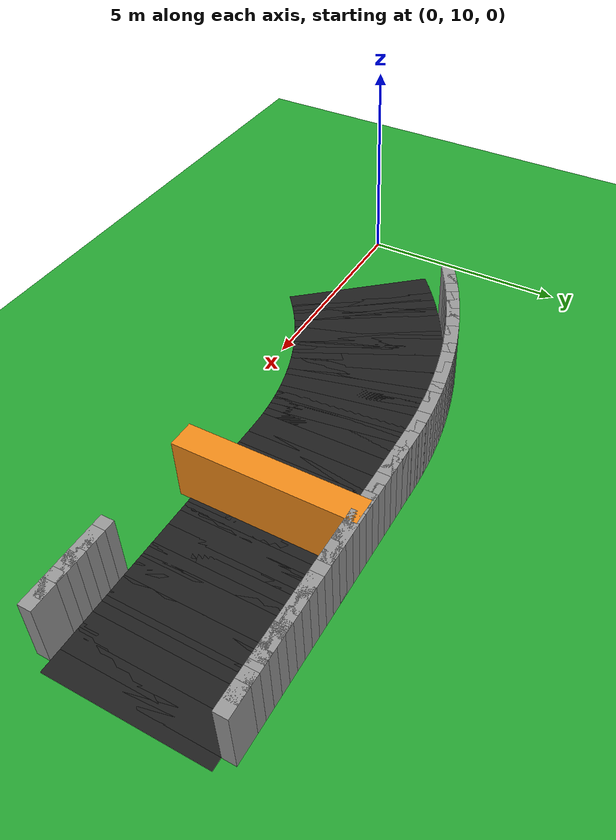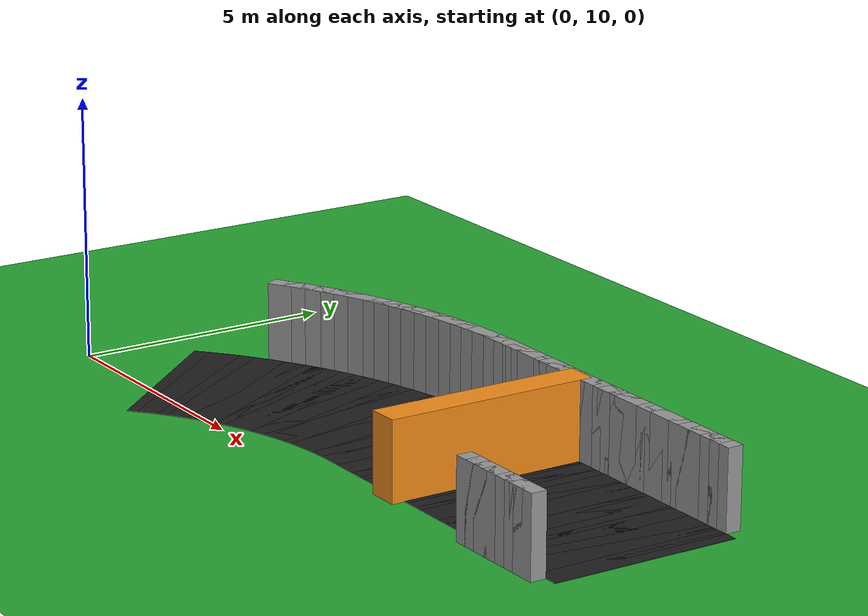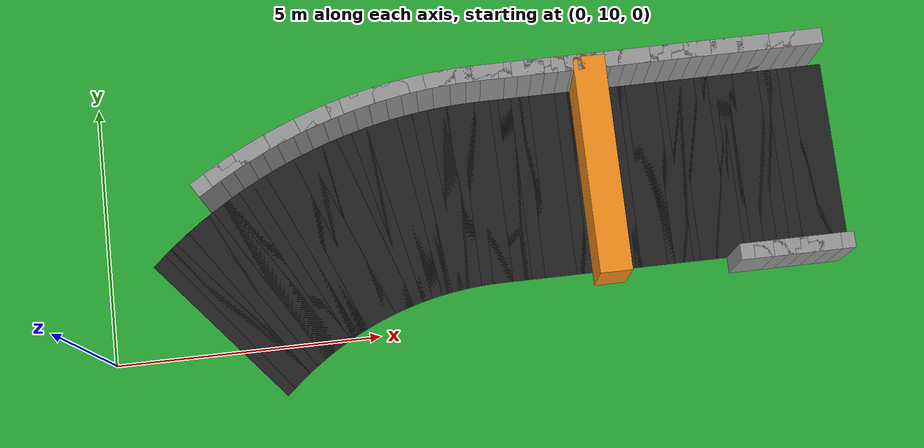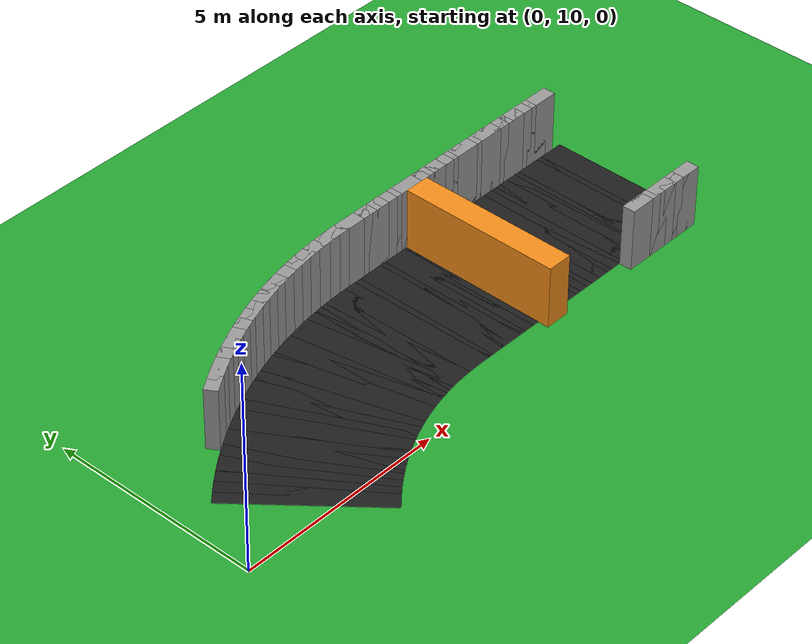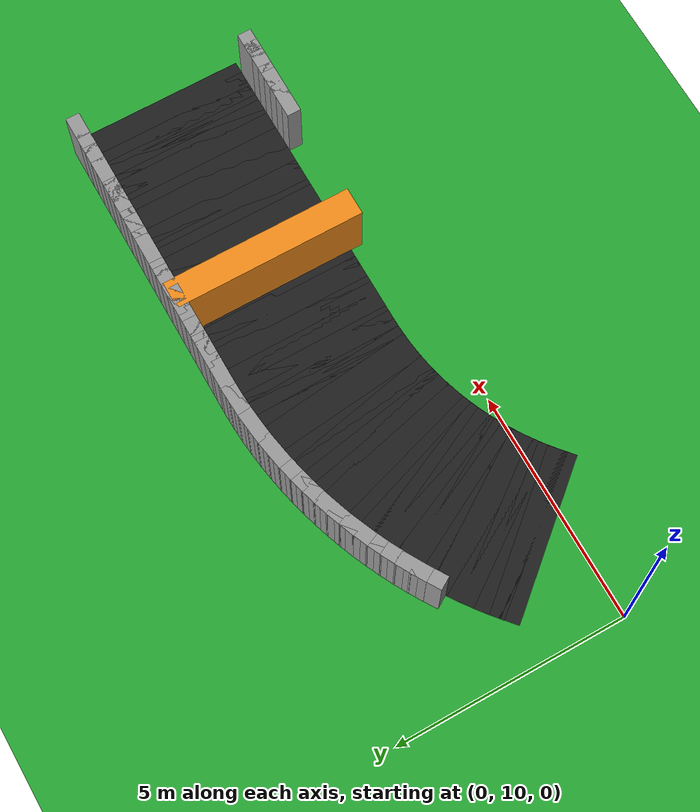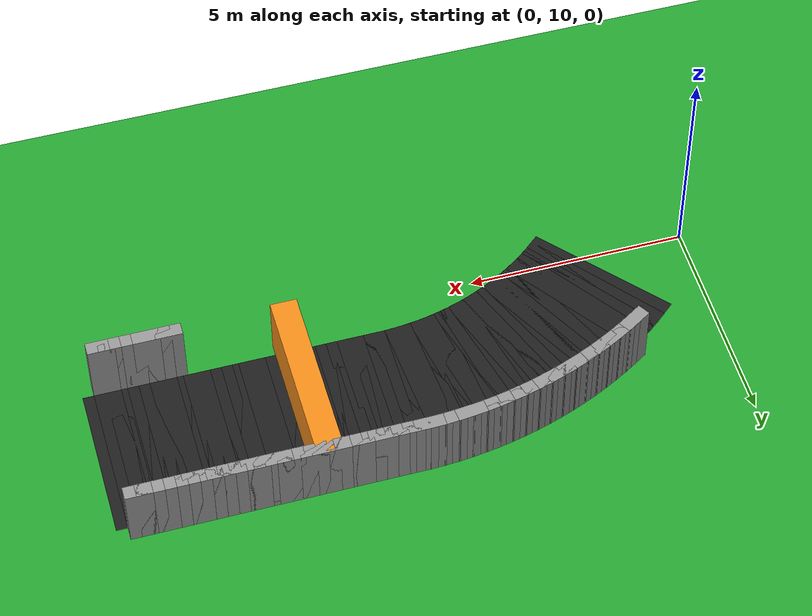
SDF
<sdf version="1.6">
 <world name="obstacle_tight">
  <include><uri>model://sun</uri></include>
  <model name="ground_plane">
   <static>true</static>
   <link name="link">
    <collision name="collision">
     <surface><friction><ode><mu>100</mu><mu2>50</mu2></ode></friction></surface>
     <geometry><plane><normal>0 0 1</normal><size>120 120</size></plane></geometry>
    </collision>
    <visual name="visual">
     <geometry><plane><normal>0 0 1</normal><size>120 120</size></plane></geometry>
     <material>
      <script><uri>file://media/materials/scripts/gazebo.material</uri><name>Gazebo/Green</name></script>
     </material>
    </visual>
   </link>
  </model>
  <model name="asphalt_216">
   <static>true</static>
   <pose>13.799 12.562 0.005 0 0 3.14159</pose>
   <link name="link">
    <visual name="visual">
     <geometry><box><size>0.610 3.600 0.010</size></box></geometry>
     <material>
      <script><uri>file://media/materials/scripts/gazebo.material</uri><name>Gazebo/Black</name></script>
     </material>
    </visual>
   </link>
  </model>
  <model name="asphalt_217">
   <static>true</static>
   <pose>13.549 12.562 0.005 0 0 3.14159</pose>
   <link name="link">
    <visual name="visual">
     <geometry><box><size>0.610 3.600 0.010</size></box></geometry>
     <material>
      <script><uri>file://media/materials/scripts/gazebo.material</uri><name>Gazebo/Black</name></script>
     </material>
    </visual>
   </link>
  </model>
  <model name="curbL_217">
   <static>true</static>
   <pose>13.549 10.612 0.750 0 0 3.14159</pose>
   <link name="link">
    <collision name="collision"><geometry><box><size>0.610 0.300 1.500</size></box></geometry></collision>
    <visual name="visual">
     <geometry><box><size>0.610 0.300 1.500</size></box></geometry>
     <material>
      <script><uri>file://media/materials/scripts/gazebo.material</uri><name>Gazebo/Grey</name></script>
     </material>
    </visual>
   </link>
  </model>
  <model name="curbR_217">
   <static>true</static>
   <pose>13.549 14.512 0.750 0 0 3.14159</pose>
   <link name="link">
    <collision name="collision"><geometry><box><size>0.610 0.300 1.500</size></box></geometry></collision>
    <visual name="visual">
     <geometry><box><size>0.610 0.300 1.500</size></box></geometry>
     <material>
      <script><uri>file://media/materials/scripts/gazebo.material</uri><name>Gazebo/Grey</name></script>
     </material>
    </visual>
   </link>
  </model>
  <model name="asphalt_218">
   <static>true</static>
   <pose>13.299 12.562 0.005 0 0 3.14159</pose>
   <link name="link">
    <visual name="visual">
     <geometry><box><size>0.610 3.600 0.010</size></box></geometry>
     <material>
      <script><uri>file://media/materials/scripts/gazebo.material</uri><name>Gazebo/Black</name></script>
     </material>
    </visual>
   </link>
  </model>
  <model name="curbL_218">
   <static>true</static>
   <pose>13.299 10.612 0.750 0 0 3.14159</pose>
   <link name="link">
    <collision name="collision"><geometry><box><size>0.610 0.300 1.500</size></box></geometry></collision>
    <visual name="visual">
     <geometry><box><size>0.610 0.300 1.500</size></box></geometry>
     <material>
      <script><uri>file://media/materials/scripts/gazebo.material</uri><name>Gazebo/Grey</name></script>
     </material>
    </visual>
   </link>
  </model>
  <model name="curbR_218">
   <static>true</static>
   <pose>13.299 14.512 0.750 0 0 3.14159</pose>
   <link name="link">
    <collision name="collision"><geometry><box><size>0.610 0.300 1.500</size></box></geometry></collision>
    <visual name="visual">
     <geometry><box><size>0.610 0.300 1.500</size></box></geometry>
     <material>
      <script><uri>file://media/materials/scripts/gazebo.material</uri><name>Gazebo/Grey</name></script>
     </material>
    </visual>
   </link>
  </model>
  <model name="asphalt_219">
   <static>true</static>
   <pose>13.049 12.562 0.005 0 0 3.14159</pose>
   <link name="link">
    <visual name="visual">
     <geometry><box><size>0.610 3.600 0.010</size></box></geometry>
     <material>
      <script><uri>file://media/materials/scripts/gazebo.material</uri><name>Gazebo/Black</name></script>
     </material>
    </visual>
   </link>
  </model>
  <model name="curbL_219">
   <static>true</static>
   <pose>13.049 10.612 0.750 0 0 3.14159</pose>
   <link name="link">
    <collision name="collision"><geometry><box><size>0.610 0.300 1.500</size></box></geometry></collision>
    <visual name="visual">
     <geometry><box><size>0.610 0.300 1.500</size></box></geometry>
     <material>
      <script><uri>file://media/materials/scripts/gazebo.material</uri><name>Gazebo/Grey</name></script>
     </material>
    </visual>
   </link>
  </model>
  <model name="curbR_219">
   <static>true</static>
   <pose>13.049 14.512 0.750 0 0 3.14159</pose>
   <link name="link">
    <collision name="collision"><geometry><box><size>0.610 0.300 1.500</size></box></geometry></collision>
    <visual name="visual">
     <geometry><box><size>0.610 0.300 1.500</size></box></geometry>
     <material>
      <script><uri>file://media/materials/scripts/gazebo.material</uri><name>Gazebo/Grey</name></script>
     </material>
    </visual>
   </link>
  </model>
  <model name="asphalt_220">
   <static>true</static>
   <pose>12.799 12.562 0.005 0 0 3.14159</pose>
   <link name="link">
    <visual name="visual">
     <geometry><box><size>0.610 3.600 0.010</size></box></geometry>
     <material>
      <script><uri>file://media/materials/scripts/gazebo.material</uri><name>Gazebo/Black</name></script>
     </material>
    </visual>
   </link>
  </model>
  <model name="curbL_220">
   <static>true</static>
   <pose>12.799 10.612 0.750 0 0 3.14159</pose>
   <link name="link">
    <collision name="collision"><geometry><box><size>0.610 0.300 1.500</size></box></geometry></collision>
    <visual name="visual">
     <geometry><box><size>0.610 0.300 1.500</size></box></geometry>
     <material>
      <script><uri>file://media/materials/scripts/gazebo.material</uri><name>Gazebo/Grey</name></script>
     </material>
    </visual>
   </link>
  </model>
  <model name="curbR_220">
   <static>true</static>
   <pose>12.799 14.512 0.750 0 0 3.14159</pose>
   <link name="link">
    <collision name="collision"><geometry><box><size>0.610 0.300 1.500</size></box></geometry></collision>
    <visual name="visual">
     <geometry><box><size>0.610 0.300 1.500</size></box></geometry>
     <material>
      <script><uri>file://media/materials/scripts/gazebo.material</uri><name>Gazebo/Grey</name></script>
     </material>
    </visual>
   </link>
  </model>
  <model name="asphalt_221">
   <static>true</static>
   <pose>12.549 12.562 0.005 0 0 3.14159</pose>
   <link name="link">
    <visual name="visual">
     <geometry><box><size>0.610 3.600 0.010</size></box></geometry>
     <material>
      <script><uri>file://media/materials/scripts/gazebo.material</uri><name>Gazebo/Black</name></script>
     </material>
    </visual>
   </link>
  </model>
  <model name="curbL_221">
   <static>true</static>
   <pose>12.549 10.612 0.750 0 0 3.14159</pose>
   <link name="link">
    <collision name="collision"><geometry><box><size>0.610 0.300 1.500</size></box></geometry></collision>
    <visual name="visual">
     <geometry><box><size>0.610 0.300 1.500</size></box></geometry>
     <material>
      <script><uri>file://media/materials/scripts/gazebo.material</uri><name>Gazebo/Grey</name></script>
     </material>
    </visual>
   </link>
  </model>
  <model name="curbR_221">
   <static>true</static>
   <pose>12.549 14.512 0.750 0 0 3.14159</pose>
   <link name="link">
    <collision name="collision"><geometry><box><size>0.610 0.300 1.500</size></box></geometry></collision>
    <visual name="visual">
     <geometry><box><size>0.610 0.300 1.500</size></box></geometry>
     <material>
      <script><uri>file://media/materials/scripts/gazebo.material</uri><name>Gazebo/Grey</name></script>
     </material>
    </visual>
   </link>
  </model>
  <model name="asphalt_222">
   <static>true</static>
   <pose>12.299 12.562 0.005 0 0 3.14159</pose>
   <link name="link">
    <visual name="visual">
     <geometry><box><size>0.610 3.600 0.010</size></box></geometry>
     <material>
      <script><uri>file://media/materials/scripts/gazebo.material</uri><name>Gazebo/Black</name></script>
     </material>
    </visual>
   </link>
  </model>
  <model name="curbL_222">
   <static>true</static>
   <pose>12.299 10.612 0.750 0 0 3.14159</pose>
   <link name="link">
    <collision name="collision"><geometry><box><size>0.610 0.300 1.500</size></box></geometry></collision>
    <visual name="visual">
     <geometry><box><size>0.610 0.300 1.500</size></box></geometry>
     <material>
      <script><uri>file://media/materials/scripts/gazebo.material</uri><name>Gazebo/Grey</name></script>
     </material>
    </visual>
   </link>
  </model>
  <model name="curbR_222">
   <static>true</static>
   <pose>12.299 14.512 0.750 0 0 3.14159</pose>
   <link name="link">
    <collision name="collision"><geometry><box><size>0.610 0.300 1.500</size></box></geometry></collision>
    <visual name="visual">
     <geometry><box><size>0.610 0.300 1.500</size></box></geometry>
     <material>
      <script><uri>file://media/materials/scripts/gazebo.material</uri><name>Gazebo/Grey</name></script>
     </material>
    </visual>
   </link>
  </model>
  <model name="asphalt_223">
   <static>true</static>
   <pose>12.049 12.562 0.005 0 0 3.14159</pose>
   <link name="link">
    <visual name="visual">
     <geometry><box><size>0.610 3.600 0.010</size></box></geometry>
     <material>
      <script><uri>file://media/materials/scripts/gazebo.material</uri><name>Gazebo/Black</name></script>
     </material>
    </visual>
   </link>
  </model>
  <model name="curbL_223">
   <static>true</static>
   <pose>12.049 10.612 0.750 0 0 3.14159</pose>
   <link name="link">
    <collision name="collision"><geometry><box><size>0.610 0.300 1.500</size></box></geometry></collision>
    <visual name="visual">
     <geometry><box><size>0.610 0.300 1.500</size></box></geometry>
     <material>
      <script><uri>file://media/materials/scripts/gazebo.material</uri><name>Gazebo/Grey</name></script>
     </material>
    </visual>
   </link>
  </model>
  <model name="curbR_223">
   <static>true</static>
   <pose>12.049 14.512 0.750 0 0 3.14159</pose>
   <link name="link">
    <collision name="collision"><geometry><box><size>0.610 0.300 1.500</size></box></geometry></collision>
    <visual name="visual">
     <geometry><box><size>0.610 0.300 1.500</size></box></geometry>
     <material>
      <script><uri>file://media/materials/scripts/gazebo.material</uri><name>Gazebo/Grey</name></script>
     </material>
    </visual>
   </link>
  </model>
  <model name="asphalt_224">
   <static>true</static>
   <pose>11.799 12.562 0.005 0 0 3.14159</pose>
   <link name="link">
    <visual name="visual">
     <geometry><box><size>0.610 3.600 0.010</size></box></geometry>
     <material>
      <script><uri>file://media/materials/scripts/gazebo.material</uri><name>Gazebo/Black</name></script>
     </material>
    </visual>
   </link>
  </model>
  <model name="curbR_224">
   <static>true</static>
   <pose>11.799 14.512 0.750 0 0 3.14159</pose>
   <link name="link">
    <collision name="collision"><geometry><box><size>0.610 0.300 1.500</size></box></geometry></collision>
    <visual name="visual">
     <geometry><box><size>0.610 0.300 1.500</size></box></geometry>
     <material>
      <script><uri>file://media/materials/scripts/gazebo.material</uri><name>Gazebo/Grey</name></script>
     </material>
    </visual>
   </link>
  </model>
  <model name="asphalt_225">
   <static>true</static>
   <pose>11.549 12.562 0.005 0 0 3.14159</pose>
   <link name="link">
    <visual name="visual">
     <geometry><box><size>0.610 3.600 0.010</size></box></geometry>
     <material>
      <script><uri>file://media/materials/scripts/gazebo.material</uri><name>Gazebo/Black</name></script>
     </material>
    </visual>
   </link>
  </model>
  <model name="curbR_225">
   <static>true</static>
   <pose>11.549 14.512 0.750 0 0 3.14159</pose>
   <link name="link">
    <collision name="collision"><geometry><box><size>0.610 0.300 1.500</size></box></geometry></collision>
    <visual name="visual">
     <geometry><box><size>0.610 0.300 1.500</size></box></geometry>
     <material>
      <script><uri>file://media/materials/scripts/gazebo.material</uri><name>Gazebo/Grey</name></script>
     </material>
    </visual>
   </link>
  </model>
  <model name="asphalt_226">
   <static>true</static>
   <pose>11.299 12.562 0.005 0 0 3.14159</pose>
   <link name="link">
    <visual name="visual">
     <geometry><box><size>0.610 3.600 0.010</size></box></geometry>
     <material>
      <script><uri>file://media/materials/scripts/gazebo.material</uri><name>Gazebo/Black</name></script>
     </material>
    </visual>
   </link>
  </model>
  <model name="curbR_226">
   <static>true</static>
   <pose>11.299 14.512 0.750 0 0 3.14159</pose>
   <link name="link">
    <collision name="collision"><geometry><box><size>0.610 0.300 1.500</size></box></geometry></collision>
    <visual name="visual">
     <geometry><box><size>0.610 0.300 1.500</size></box></geometry>
     <material>
      <script><uri>file://media/materials/scripts/gazebo.material</uri><name>Gazebo/Grey</name></script>
     </material>
    </visual>
   </link>
  </model>
  <model name="asphalt_227">
   <static>true</static>
   <pose>11.049 12.562 0.005 0 0 3.14159</pose>
   <link name="link">
    <visual name="visual">
     <geometry><box><size>0.610 3.600 0.010</size></box></geometry>
     <material>
      <script><uri>file://media/materials/scripts/gazebo.material</uri><name>Gazebo/Black</name></script>
     </material>
    </visual>
   </link>
  </model>
  <model name="curbR_227">
   <static>true</static>
   <pose>11.049 14.512 0.750 0 0 3.14159</pose>
   <link name="link">
    <collision name="collision"><geometry><box><size>0.610 0.300 1.500</size></box></geometry></collision>
    <visual name="visual">
     <geometry><box><size>0.610 0.300 1.500</size></box></geometry>
     <material>
      <script><uri>file://media/materials/scripts/gazebo.material</uri><name>Gazebo/Grey</name></script>
     </material>
    </visual>
   </link>
  </model>
  <model name="asphalt_228">
   <static>true</static>
   <pose>10.799 12.562 0.005 0 0 3.14159</pose>
   <link name="link">
    <visual name="visual">
     <geometry><box><size>0.610 3.600 0.010</size></box></geometry>
     <material>
      <script><uri>file://media/materials/scripts/gazebo.material</uri><name>Gazebo/Black</name></script>
     </material>
    </visual>
   </link>
  </model>
  <model name="curbR_228">
   <static>true</static>
   <pose>10.799 14.512 0.750 0 0 3.14159</pose>
   <link name="link">
    <collision name="collision"><geometry><box><size>0.610 0.300 1.500</size></box></geometry></collision>
    <visual name="visual">
     <geometry><box><size>0.610 0.300 1.500</size></box></geometry>
     <material>
      <script><uri>file://media/materials/scripts/gazebo.material</uri><name>Gazebo/Grey</name></script>
     </material>
    </visual>
   </link>
  </model>
  <model name="asphalt_229">
   <static>true</static>
   <pose>10.549 12.562 0.005 0 0 3.14159</pose>
   <link name="link">
    <visual name="visual">
     <geometry><box><size>0.610 3.600 0.010</size></box></geometry>
     <material>
      <script><uri>file://media/materials/scripts/gazebo.material</uri><name>Gazebo/Black</name></script>
     </material>
    </visual>
   </link>
  </model>
  <model name="curbR_229">
   <static>true</static>
   <pose>10.549 14.512 0.750 0 0 3.14159</pose>
   <link name="link">
    <collision name="collision"><geometry><box><size>0.610 0.300 1.500</size></box></geometry></collision>
    <visual name="visual">
     <geometry><box><size>0.610 0.300 1.500</size></box></geometry>
     <material>
      <script><uri>file://media/materials/scripts/gazebo.material</uri><name>Gazebo/Grey</name></script>
     </material>
    </visual>
   </link>
  </model>
  <model name="asphalt_230">
   <static>true</static>
   <pose>10.299 12.562 0.005 0 0 3.14159</pose>
   <link name="link">
    <visual name="visual">
     <geometry><box><size>0.610 3.600 0.010</size></box></geometry>
     <material>
      <script><uri>file://media/materials/scripts/gazebo.material</uri><name>Gazebo/Black</name></script>
     </material>
    </visual>
   </link>
  </model>
  <model name="curbR_230">
   <static>true</static>
   <pose>10.299 14.512 0.750 0 0 3.14159</pose>
   <link name="link">
    <collision name="collision"><geometry><box><size>0.610 0.300 1.500</size></box></geometry></collision>
    <visual name="visual">
     <geometry><box><size>0.610 0.300 1.500</size></box></geometry>
     <material>
      <script><uri>file://media/materials/scripts/gazebo.material</uri><name>Gazebo/Grey</name></script>
     </material>
    </visual>
   </link>
  </model>
  <model name="asphalt_231">
   <static>true</static>
   <pose>10.049 12.562 0.005 0 0 3.14159</pose>
   <link name="link">
    <visual name="visual">
     <geometry><box><size>0.610 3.600 0.010</size></box></geometry>
     <material>
      <script><uri>file://media/materials/scripts/gazebo.material</uri><name>Gazebo/Black</name></script>
     </material>
    </visual>
   </link>
  </model>
  <model name="curbR_231">
   <static>true</static>
   <pose>10.049 14.512 0.750 0 0 3.14159</pose>
   <link name="link">
    <collision name="collision"><geometry><box><size>0.610 0.300 1.500</size></box></geometry></collision>
    <visual name="visual">
     <geometry><box><size>0.610 0.300 1.500</size></box></geometry>
     <material>
      <script><uri>file://media/materials/scripts/gazebo.material</uri><name>Gazebo/Grey</name></script>
     </material>
    </visual>
   </link>
  </model>
  <model name="asphalt_232">
   <static>true</static>
   <pose>9.799 12.562 0.005 0 0 3.14159</pose>
   <link name="link">
    <visual name="visual">
     <geometry><box><size>0.610 3.600 0.010</size></box></geometry>
     <material>
      <script><uri>file://media/materials/scripts/gazebo.material</uri><name>Gazebo/Black</name></script>
     </material>
    </visual>
   </link>
  </model>
  <model name="curbR_232">
   <static>true</static>
   <pose>9.799 14.512 0.750 0 0 3.14159</pose>
   <link name="link">
    <collision name="collision"><geometry><box><size>0.610 0.300 1.500</size></box></geometry></collision>
    <visual name="visual">
     <geometry><box><size>0.610 0.300 1.500</size></box></geometry>
     <material>
      <script><uri>file://media/materials/scripts/gazebo.material</uri><name>Gazebo/Grey</name></script>
     </material>
    </visual>
   </link>
  </model>
  <model name="asphalt_233">
   <static>true</static>
   <pose>9.549 12.562 0.005 0 0 3.14159</pose>
   <link name="link">
    <visual name="visual">
     <geometry><box><size>0.610 3.600 0.010</size></box></geometry>
     <material>
      <script><uri>file://media/materials/scripts/gazebo.material</uri><name>Gazebo/Black</name></script>
     </material>
    </visual>
   </link>
  </model>
  <model name="curbR_233">
   <static>true</static>
   <pose>9.549 14.512 0.750 0 0 3.14159</pose>
   <link name="link">
    <collision name="collision"><geometry><box><size>0.610 0.300 1.500</size></box></geometry></collision>
    <visual name="visual">
     <geometry><box><size>0.610 0.300 1.500</size></box></geometry>
     <material>
      <script><uri>file://media/materials/scripts/gazebo.material</uri><name>Gazebo/Grey</name></script>
     </material>
    </visual>
   </link>
  </model>
  <model name="asphalt_234">
   <static>true</static>
   <pose>9.299 12.562 0.005 0 0 3.14159</pose>
   <link name="link">
    <visual name="visual">
     <geometry><box><size>0.610 3.600 0.010</size></box></geometry>
     <material>
      <script><uri>file://media/materials/scripts/gazebo.material</uri><name>Gazebo/Black</name></script>
     </material>
    </visual>
   </link>
  </model>
  <model name="curbR_234">
   <static>true</static>
   <pose>9.299 14.512 0.750 0 0 3.14159</pose>
   <link name="link">
    <collision name="collision"><geometry><box><size>0.610 0.300 1.500</size></box></geometry></collision>
    <visual name="visual">
     <geometry><box><size>0.610 0.300 1.500</size></box></geometry>
     <material>
      <script><uri>file://media/materials/scripts/gazebo.material</uri><name>Gazebo/Grey</name></script>
     </material>
    </visual>
   </link>
  </model>
  <model name="asphalt_235">
   <static>true</static>
   <pose>9.049 12.562 0.005 0 0 3.14159</pose>
   <link name="link">
    <visual name="visual">
     <geometry><box><size>0.610 3.600 0.010</size></box></geometry>
     <material>
      <script><uri>file://media/materials/scripts/gazebo.material</uri><name>Gazebo/Black</name></script>
     </material>
    </visual>
   </link>
  </model>
  <model name="curbR_235">
   <static>true</static>
   <pose>9.049 14.512 0.750 0 0 3.14159</pose>
   <link name="link">
    <collision name="collision"><geometry><box><size>0.610 0.300 1.500</size></box></geometry></collision>
    <visual name="visual">
     <geometry><box><size>0.610 0.300 1.500</size></box></geometry>
     <material>
      <script><uri>file://media/materials/scripts/gazebo.material</uri><name>Gazebo/Grey</name></script>
     </material>
    </visual>
   </link>
  </model>
  <model name="asphalt_236">
   <static>true</static>
   <pose>8.799 12.562 0.005 0 0 3.14159</pose>
   <link name="link">
    <visual name="visual">
     <geometry><box><size>0.610 3.600 0.010</size></box></geometry>
     <material>
      <script><uri>file://media/materials/scripts/gazebo.material</uri><name>Gazebo/Black</name></script>
     </material>
    </visual>
   </link>
  </model>
  <model name="curbR_236">
   <static>true</static>
   <pose>8.799 14.512 0.750 0 0 3.14159</pose>
   <link name="link">
    <collision name="collision"><geometry><box><size>0.610 0.300 1.500</size></box></geometry></collision>
    <visual name="visual">
     <geometry><box><size>0.610 0.300 1.500</size></box></geometry>
     <material>
      <script><uri>file://media/materials/scripts/gazebo.material</uri><name>Gazebo/Grey</name></script>
     </material>
    </visual>
   </link>
  </model>
  <model name="asphalt_237">
   <static>true</static>
   <pose>8.549 12.562 0.005 0 0 3.14159</pose>
   <link name="link">
    <visual name="visual">
     <geometry><box><size>0.610 3.600 0.010</size></box></geometry>
     <material>
      <script><uri>file://media/materials/scripts/gazebo.material</uri><name>Gazebo/Black</name></script>
     </material>
    </visual>
   </link>
  </model>
  <model name="curbR_237">
   <static>true</static>
   <pose>8.549 14.512 0.750 0 0 3.14159</pose>
   <link name="link">
    <collision name="collision"><geometry><box><size>0.610 0.300 1.500</size></box></geometry></collision>
    <visual name="visual">
     <geometry><box><size>0.610 0.300 1.500</size></box></geometry>
     <material>
      <script><uri>file://media/materials/scripts/gazebo.material</uri><name>Gazebo/Grey</name></script>
     </material>
    </visual>
   </link>
  </model>
  <model name="asphalt_238">
   <static>true</static>
   <pose>8.299 12.562 0.005 0 0 3.14159</pose>
   <link name="link">
    <visual name="visual">
     <geometry><box><size>0.610 3.600 0.010</size></box></geometry>
     <material>
      <script><uri>file://media/materials/scripts/gazebo.material</uri><name>Gazebo/Black</name></script>
     </material>
    </visual>
   </link>
  </model>
  <model name="curbR_238">
   <static>true</static>
   <pose>8.299 14.512 0.750 0 0 3.14159</pose>
   <link name="link">
    <collision name="collision"><geometry><box><size>0.610 0.300 1.500</size></box></geometry></collision>
    <visual name="visual">
     <geometry><box><size>0.610 0.300 1.500</size></box></geometry>
     <material>
      <script><uri>file://media/materials/scripts/gazebo.material</uri><name>Gazebo/Grey</name></script>
     </material>
    </visual>
   </link>
  </model>
  <model name="asphalt_239">
   <static>true</static>
   <pose>8.049 12.562 0.005 0 0 3.14159</pose>
   <link name="link">
    <visual name="visual">
     <geometry><box><size>0.610 3.600 0.010</size></box></geometry>
     <material>
      <script><uri>file://media/materials/scripts/gazebo.material</uri><name>Gazebo/Black</name></script>
     </material>
    </visual>
   </link>
  </model>
  <model name="curbR_239">
   <static>true</static>
   <pose>8.049 14.512 0.750 0 0 3.14159</pose>
   <link name="link">
    <collision name="collision"><geometry><box><size>0.610 0.300 1.500</size></box></geometry></collision>
    <visual name="visual">
     <geometry><box><size>0.610 0.300 1.500</size></box></geometry>
     <material>
      <script><uri>file://media/materials/scripts/gazebo.material</uri><name>Gazebo/Grey</name></script>
     </material>
    </visual>
   </link>
  </model>
  <model name="asphalt_240">
   <static>true</static>
   <pose>7.799 12.562 0.005 0 0 3.14159</pose>
   <link name="link">
    <visual name="visual">
     <geometry><box><size>0.610 3.600 0.010</size></box></geometry>
     <material>
      <script><uri>file://media/materials/scripts/gazebo.material</uri><name>Gazebo/Black</name></script>
     </material>
    </visual>
   </link>
  </model>
  <model name="curbR_240">
   <static>true</static>
   <pose>7.799 14.512 0.750 0 0 3.14159</pose>
   <link name="link">
    <collision name="collision"><geometry><box><size>0.610 0.300 1.500</size></box></geometry></collision>
    <visual name="visual">
     <geometry><box><size>0.610 0.300 1.500</size></box></geometry>
     <material>
      <script><uri>file://media/materials/scripts/gazebo.material</uri><name>Gazebo/Grey</name></script>
     </material>
    </visual>
   </link>
  </model>
  <model name="asphalt_241">
   <static>true</static>
   <pose>7.549 12.562 0.005 0 0 3.14159</pose>
   <link name="link">
    <visual name="visual">
     <geometry><box><size>0.610 3.600 0.010</size></box></geometry>
     <material>
      <script><uri>file://media/materials/scripts/gazebo.material</uri><name>Gazebo/Black</name></script>
     </material>
    </visual>
   </link>
  </model>
  <model name="curbR_241">
   <static>true</static>
   <pose>7.549 14.512 0.750 0 0 3.14159</pose>
   <link name="link">
    <collision name="collision"><geometry><box><size>0.610 0.300 1.500</size></box></geometry></collision>
    <visual name="visual">
     <geometry><box><size>0.610 0.300 1.500</size></box></geometry>
     <material>
      <script><uri>file://media/materials/scripts/gazebo.material</uri><name>Gazebo/Grey</name></script>
     </material>
    </visual>
   </link>
  </model>
  <model name="asphalt_242">
   <static>true</static>
   <pose>7.299 12.560 0.005 0 0 -3.12588</pose>
   <link name="link">
    <visual name="visual">
     <geometry><box><size>0.611 3.600 0.010</size></box></geometry>
     <material>
      <script><uri>file://media/materials/scripts/gazebo.material</uri><name>Gazebo/Black</name></script>
     </material>
    </visual>
   </link>
  </model>
  <model name="curbR_242">
   <static>true</static>
   <pose>7.268 14.510 0.750 0 0 -3.12588</pose>
   <link name="link">
    <collision name="collision"><geometry><box><size>0.673 0.300 1.500</size></box></geometry></collision>
    <visual name="visual">
     <geometry><box><size>0.673 0.300 1.500</size></box></geometry>
     <material>
      <script><uri>file://media/materials/scripts/gazebo.material</uri><name>Gazebo/Grey</name></script>
     </material>
    </visual>
   </link>
  </model>
  <model name="asphalt_243">
   <static>true</static>
   <pose>7.048 12.552 0.005 0 0 -3.09447</pose>
   <link name="link">
    <visual name="visual">
     <geometry><box><size>0.611 3.600 0.010</size></box></geometry>
     <material>
      <script><uri>file://media/materials/scripts/gazebo.material</uri><name>Gazebo/Black</name></script>
     </material>
    </visual>
   </link>
  </model>
  <model name="curbR_243">
   <static>true</static>
   <pose>6.956 14.500 0.750 0 0 -3.09447</pose>
   <link name="link">
    <collision name="collision"><geometry><box><size>0.673 0.300 1.500</size></box></geometry></collision>
    <visual name="visual">
     <geometry><box><size>0.673 0.300 1.500</size></box></geometry>
     <material>
      <script><uri>file://media/materials/scripts/gazebo.material</uri><name>Gazebo/Grey</name></script>
     </material>
    </visual>
   </link>
  </model>
  <model name="asphalt_244">
   <static>true</static>
   <pose>6.797 12.536 0.005 0 0 -3.06305</pose>
   <link name="link">
    <visual name="visual">
     <geometry><box><size>0.611 3.600 0.010</size></box></geometry>
     <material>
      <script><uri>file://media/materials/scripts/gazebo.material</uri><name>Gazebo/Black</name></script>
     </material>
    </visual>
   </link>
  </model>
  <model name="curbR_244">
   <static>true</static>
   <pose>6.644 14.480 0.750 0 0 -3.06305</pose>
   <link name="link">
    <collision name="collision"><geometry><box><size>0.673 0.300 1.500</size></box></geometry></collision>
    <visual name="visual">
     <geometry><box><size>0.673 0.300 1.500</size></box></geometry>
     <material>
      <script><uri>file://media/materials/scripts/gazebo.material</uri><name>Gazebo/Grey</name></script>
     </material>
    </visual>
   </link>
  </model>
  <model name="asphalt_245">
   <static>true</static>
   <pose>6.547 12.513 0.005 0 0 -3.03164</pose>
   <link name="link">
    <visual name="visual">
     <geometry><box><size>0.611 3.600 0.010</size></box></geometry>
     <material>
      <script><uri>file://media/materials/scripts/gazebo.material</uri><name>Gazebo/Black</name></script>
     </material>
    </visual>
   </link>
  </model>
  <model name="curbR_245">
   <static>true</static>
   <pose>6.333 14.451 0.750 0 0 -3.03164</pose>
   <link name="link">
    <collision name="collision"><geometry><box><size>0.673 0.300 1.500</size></box></geometry></collision>
    <visual name="visual">
     <geometry><box><size>0.673 0.300 1.500</size></box></geometry>
     <material>
      <script><uri>file://media/materials/scripts/gazebo.material</uri><name>Gazebo/Grey</name></script>
     </material>
    </visual>
   </link>
  </model>
  <model name="asphalt_246">
   <static>true</static>
   <pose>6.297 12.481 0.005 0 0 -3.00022</pose>
   <link name="link">
    <visual name="visual">
     <geometry><box><size>0.611 3.600 0.010</size></box></geometry>
     <material>
      <script><uri>file://media/materials/scripts/gazebo.material</uri><name>Gazebo/Black</name></script>
     </material>
    </visual>
   </link>
  </model>
  <model name="curbR_246">
   <static>true</static>
   <pose>6.022 14.412 0.750 0 0 -3.00022</pose>
   <link name="link">
    <collision name="collision"><geometry><box><size>0.673 0.300 1.500</size></box></geometry></collision>
    <visual name="visual">
     <geometry><box><size>0.673 0.300 1.500</size></box></geometry>
     <material>
      <script><uri>file://media/materials/scripts/gazebo.material</uri><name>Gazebo/Grey</name></script>
     </material>
    </visual>
   </link>
  </model>
  <model name="asphalt_247">
   <static>true</static>
   <pose>6.049 12.442 0.005 0 0 -2.96881</pose>
   <link name="link">
    <visual name="visual">
     <geometry><box><size>0.611 3.600 0.010</size></box></geometry>
     <material>
      <script><uri>file://media/materials/scripts/gazebo.material</uri><name>Gazebo/Black</name></script>
     </material>
    </visual>
   </link>
  </model>
  <model name="curbR_247">
   <static>true</static>
   <pose>5.714 14.363 0.750 0 0 -2.96881</pose>
   <link name="link">
    <collision name="collision"><geometry><box><size>0.673 0.300 1.500</size></box></geometry></collision>
    <visual name="visual">
     <geometry><box><size>0.673 0.300 1.500</size></box></geometry>
     <material>
      <script><uri>file://media/materials/scripts/gazebo.material</uri><name>Gazebo/Grey</name></script>
     </material>
    </visual>
   </link>
  </model>
  <model name="asphalt_248">
   <static>true</static>
   <pose>5.802 12.395 0.005 0 0 -2.93739</pose>
   <link name="link">
    <visual name="visual">
     <geometry><box><size>0.611 3.600 0.010</size></box></geometry>
     <material>
      <script><uri>file://media/materials/scripts/gazebo.material</uri><name>Gazebo/Black</name></script>
     </material>
    </visual>
   </link>
  </model>
  <model name="curbR_248">
   <static>true</static>
   <pose>5.407 14.304 0.750 0 0 -2.93739</pose>
   <link name="link">
    <collision name="collision"><geometry><box><size>0.673 0.300 1.500</size></box></geometry></collision>
    <visual name="visual">
     <geometry><box><size>0.673 0.300 1.500</size></box></geometry>
     <material>
      <script><uri>file://media/materials/scripts/gazebo.material</uri><name>Gazebo/Grey</name></script>
     </material>
    </visual>
   </link>
  </model>
  <model name="asphalt_249">
   <static>true</static>
   <pose>5.557 12.340 0.005 0 0 -2.90597</pose>
   <link name="link">
    <visual name="visual">
     <geometry><box><size>0.611 3.600 0.010</size></box></geometry>
     <material>
      <script><uri>file://media/materials/scripts/gazebo.material</uri><name>Gazebo/Black</name></script>
     </material>
    </visual>
   </link>
  </model>
  <model name="curbR_249">
   <static>true</static>
   <pose>5.102 14.236 0.750 0 0 -2.90597</pose>
   <link name="link">
    <collision name="collision"><geometry><box><size>0.673 0.300 1.500</size></box></geometry></collision>
    <visual name="visual">
     <geometry><box><size>0.673 0.300 1.500</size></box></geometry>
     <material>
      <script><uri>file://media/materials/scripts/gazebo.material</uri><name>Gazebo/Grey</name></script>
     </material>
    </visual>
   </link>
  </model>
  <model name="asphalt_250">
   <static>true</static>
   <pose>5.314 12.278 0.005 0 0 -2.87456</pose>
   <link name="link">
    <visual name="visual">
     <geometry><box><size>0.611 3.600 0.010</size></box></geometry>
     <material>
      <script><uri>file://media/materials/scripts/gazebo.material</uri><name>Gazebo/Black</name></script>
     </material>
    </visual>
   </link>
  </model>
  <model name="curbR_250">
   <static>true</static>
   <pose>4.799 14.158 0.750 0 0 -2.87456</pose>
   <link name="link">
    <collision name="collision"><geometry><box><size>0.673 0.300 1.500</size></box></geometry></collision>
    <visual name="visual">
     <geometry><box><size>0.673 0.300 1.500</size></box></geometry>
     <material>
      <script><uri>file://media/materials/scripts/gazebo.material</uri><name>Gazebo/Grey</name></script>
     </material>
    </visual>
   </link>
  </model>
  <model name="asphalt_251">
   <static>true</static>
   <pose>5.072 12.207 0.005 0 0 -2.84314</pose>
   <link name="link">
    <visual name="visual">
     <geometry><box><size>0.611 3.600 0.010</size></box></geometry>
     <material>
      <script><uri>file://media/materials/scripts/gazebo.material</uri><name>Gazebo/Black</name></script>
     </material>
    </visual>
   </link>
  </model>
  <model name="curbR_251">
   <static>true</static>
   <pose>4.499 14.071 0.750 0 0 -2.84314</pose>
   <link name="link">
    <collision name="collision"><geometry><box><size>0.673 0.300 1.500</size></box></geometry></collision>
    <visual name="visual">
     <geometry><box><size>0.673 0.300 1.500</size></box></geometry>
     <material>
      <script><uri>file://media/materials/scripts/gazebo.material</uri><name>Gazebo/Grey</name></script>
     </material>
    </visual>
   </link>
  </model>
  <model name="asphalt_252">
   <static>true</static>
   <pose>4.833 12.130 0.005 0 0 -2.81173</pose>
   <link name="link">
    <visual name="visual">
     <geometry><box><size>0.611 3.600 0.010</size></box></geometry>
     <material>
      <script><uri>file://media/materials/scripts/gazebo.material</uri><name>Gazebo/Black</name></script>
     </material>
    </visual>
   </link>
  </model>
  <model name="curbR_252">
   <static>true</static>
   <pose>4.202 13.974 0.750 0 0 -2.81173</pose>
   <link name="link">
    <collision name="collision"><geometry><box><size>0.673 0.300 1.500</size></box></geometry></collision>
    <visual name="visual">
     <geometry><box><size>0.673 0.300 1.500</size></box></geometry>
     <material>
      <script><uri>file://media/materials/scripts/gazebo.material</uri><name>Gazebo/Grey</name></script>
     </material>
    </visual>
   </link>
  </model>
  <model name="asphalt_253">
   <static>true</static>
   <pose>4.597 12.045 0.005 0 0 -2.78031</pose>
   <link name="link">
    <visual name="visual">
     <geometry><box><size>0.611 3.600 0.010</size></box></geometry>
     <material>
      <script><uri>file://media/materials/scripts/gazebo.material</uri><name>Gazebo/Black</name></script>
     </material>
    </visual>
   </link>
  </model>
  <model name="curbR_253">
   <static>true</static>
   <pose>3.908 13.869 0.750 0 0 -2.78031</pose>
   <link name="link">
    <collision name="collision"><geometry><box><size>0.673 0.300 1.500</size></box></geometry></collision>
    <visual name="visual">
     <geometry><box><size>0.673 0.300 1.500</size></box></geometry>
     <material>
      <script><uri>file://media/materials/scripts/gazebo.material</uri><name>Gazebo/Grey</name></script>
     </material>
    </visual>
   </link>
  </model>
  <model name="asphalt_254">
   <static>true</static>
   <pose>4.363 11.952 0.005 0 0 -2.74889</pose>
   <link name="link">
    <visual name="visual">
     <geometry><box><size>0.611 3.600 0.010</size></box></geometry>
     <material>
      <script><uri>file://media/materials/scripts/gazebo.material</uri><name>Gazebo/Black</name></script>
     </material>
    </visual>
   </link>
  </model>
  <model name="curbR_254">
   <static>true</static>
   <pose>3.617 13.753 0.750 0 0 -2.74889</pose>
   <link name="link">
    <collision name="collision"><geometry><box><size>0.673 0.300 1.500</size></box></geometry></collision>
    <visual name="visual">
     <geometry><box><size>0.673 0.300 1.500</size></box></geometry>
     <material>
      <script><uri>file://media/materials/scripts/gazebo.material</uri><name>Gazebo/Grey</name></script>
     </material>
    </visual>
   </link>
  </model>
  <model name="asphalt_255">
   <static>true</static>
   <pose>4.132 11.852 0.005 0 0 -2.71748</pose>
   <link name="link">
    <visual name="visual">
     <geometry><box><size>0.611 3.600 0.010</size></box></geometry>
     <material>
      <script><uri>file://media/materials/scripts/gazebo.material</uri><name>Gazebo/Black</name></script>
     </material>
    </visual>
   </link>
  </model>
  <model name="curbR_255">
   <static>true</static>
   <pose>3.330 13.629 0.750 0 0 -2.71748</pose>
   <link name="link">
    <collision name="collision"><geometry><box><size>0.673 0.300 1.500</size></box></geometry></collision>
    <visual name="visual">
     <geometry><box><size>0.673 0.300 1.500</size></box></geometry>
     <material>
      <script><uri>file://media/materials/scripts/gazebo.material</uri><name>Gazebo/Grey</name></script>
     </material>
    </visual>
   </link>
  </model>
  <model name="asphalt_256">
   <static>true</static>
   <pose>3.905 11.745 0.005 0 0 -2.68606</pose>
   <link name="link">
    <visual name="visual">
     <geometry><box><size>0.611 3.600 0.010</size></box></geometry>
     <material>
      <script><uri>file://media/materials/scripts/gazebo.material</uri><name>Gazebo/Black</name></script>
     </material>
    </visual>
   </link>
  </model>
  <model name="curbR_256">
   <static>true</static>
   <pose>3.047 13.496 0.750 0 0 -2.68606</pose>
   <link name="link">
    <collision name="collision"><geometry><box><size>0.673 0.300 1.500</size></box></geometry></collision>
    <visual name="visual">
     <geometry><box><size>0.673 0.300 1.500</size></box></geometry>
     <material>
      <script><uri>file://media/materials/scripts/gazebo.material</uri><name>Gazebo/Grey</name></script>
     </material>
    </visual>
   </link>
  </model>
  <model name="asphalt_257">
   <static>true</static>
   <pose>3.681 11.631 0.005 0 0 -2.65465</pose>
   <link name="link">
    <visual name="visual">
     <geometry><box><size>0.611 3.600 0.010</size></box></geometry>
     <material>
      <script><uri>file://media/materials/scripts/gazebo.material</uri><name>Gazebo/Black</name></script>
     </material>
    </visual>
   </link>
  </model>
  <model name="curbR_257">
   <static>true</static>
   <pose>2.769 13.354 0.750 0 0 -2.65465</pose>
   <link name="link">
    <collision name="collision"><geometry><box><size>0.673 0.300 1.500</size></box></geometry></collision>
    <visual name="visual">
     <geometry><box><size>0.673 0.300 1.500</size></box></geometry>
     <material>
      <script><uri>file://media/materials/scripts/gazebo.material</uri><name>Gazebo/Grey</name></script>
     </material>
    </visual>
   </link>
  </model>
  <model name="asphalt_258">
   <static>true</static>
   <pose>3.461 11.510 0.005 0 0 -2.62323</pose>
   <link name="link">
    <visual name="visual">
     <geometry><box><size>0.611 3.600 0.010</size></box></geometry>
     <material>
      <script><uri>file://media/materials/scripts/gazebo.material</uri><name>Gazebo/Black</name></script>
     </material>
    </visual>
   </link>
  </model>
  <model name="curbR_258">
   <static>true</static>
   <pose>2.495 13.204 0.750 0 0 -2.62323</pose>
   <link name="link">
    <collision name="collision"><geometry><box><size>0.673 0.300 1.500</size></box></geometry></collision>
    <visual name="visual">
     <geometry><box><size>0.673 0.300 1.500</size></box></geometry>
     <material>
      <script><uri>file://media/materials/scripts/gazebo.material</uri><name>Gazebo/Grey</name></script>
     </material>
    </visual>
   </link>
  </model>
  <model name="asphalt_259">
   <static>true</static>
   <pose>3.245 11.382 0.005 0 0 -2.59181</pose>
   <link name="link">
    <visual name="visual">
     <geometry><box><size>0.611 3.600 0.010</size></box></geometry>
     <material>
      <script><uri>file://media/materials/scripts/gazebo.material</uri><name>Gazebo/Black</name></script>
     </material>
    </visual>
   </link>
  </model>
  <model name="curbR_259">
   <static>true</static>
   <pose>2.226 13.045 0.750 0 0 -2.59181</pose>
   <link name="link">
    <collision name="collision"><geometry><box><size>0.673 0.300 1.500</size></box></geometry></collision>
    <visual name="visual">
     <geometry><box><size>0.673 0.300 1.500</size></box></geometry>
     <material>
      <script><uri>file://media/materials/scripts/gazebo.material</uri><name>Gazebo/Grey</name></script>
     </material>
    </visual>
   </link>
  </model>
  <model name="asphalt_260">
   <static>true</static>
   <pose>3.033 11.248 0.005 0 0 -2.56040</pose>
   <link name="link">
    <visual name="visual">
     <geometry><box><size>0.611 3.600 0.010</size></box></geometry>
     <material>
      <script><uri>file://media/materials/scripts/gazebo.material</uri><name>Gazebo/Black</name></script>
     </material>
    </visual>
   </link>
  </model>
  <model name="asphalt_261">
   <static>true</static>
   <pose>2.825 11.106 0.005 0 0 -2.52898</pose>
   <link name="link">
    <visual name="visual">
     <geometry><box><size>0.611 3.600 0.010</size></box></geometry>
     <material>
      <script><uri>file://media/materials/scripts/gazebo.material</uri><name>Gazebo/Black</name></script>
     </material>
    </visual>
   </link>
  </model>
  <model name="asphalt_262">
   <static>true</static>
   <pose>2.621 10.959 0.005 0 0 -2.49757</pose>
   <link name="link">
    <visual name="visual">
     <geometry><box><size>0.611 3.600 0.010</size></box></geometry>
     <material>
      <script><uri>file://media/materials/scripts/gazebo.material</uri><name>Gazebo/Black</name></script>
     </material>
    </visual>
   </link>
  </model>
  <model name="asphalt_263">
   <static>true</static>
   <pose>2.423 10.805 0.005 0 0 -2.46615</pose>
   <link name="link">
    <visual name="visual">
     <geometry><box><size>0.611 3.600 0.010</size></box></geometry>
     <material>
      <script><uri>file://media/materials/scripts/gazebo.material</uri><name>Gazebo/Black</name></script>
     </material>
    </visual>
   </link>
  </model>
  <model name="asphalt_264">
   <static>true</static>
   <pose>2.229 10.644 0.005 0 0 -2.43473</pose>
   <link name="link">
    <visual name="visual">
     <geometry><box><size>0.611 3.600 0.010</size></box></geometry>
     <material>
      <script><uri>file://media/materials/scripts/gazebo.material</uri><name>Gazebo/Black</name></script>
     </material>
    </visual>
   </link>
  </model>
  <model name="obs_5">
   <static>true</static>
   <pose>9.454 12.562 0.750 0 0 3.14159</pose>
   <link name="link">
    <collision name="collision"><geometry><box><size>0.600 4.100 1.500</size></box></geometry></collision>
    <visual name="visual">
     <geometry><box><size>0.600 4.100 1.500</size></box></geometry>
     <material>
      <script><uri>file://media/materials/scripts/gazebo.material</uri><name>Gazebo/Orange</name></script>
     </material>
    </visual>
   </link>
  </model>
 </world>
</sdf>
